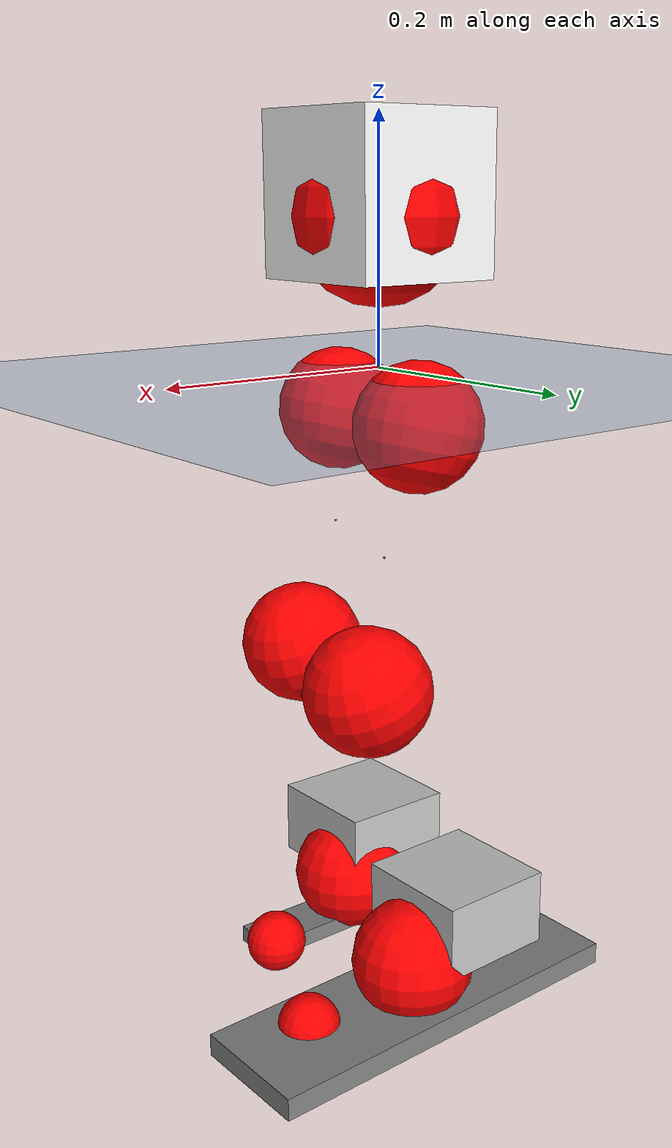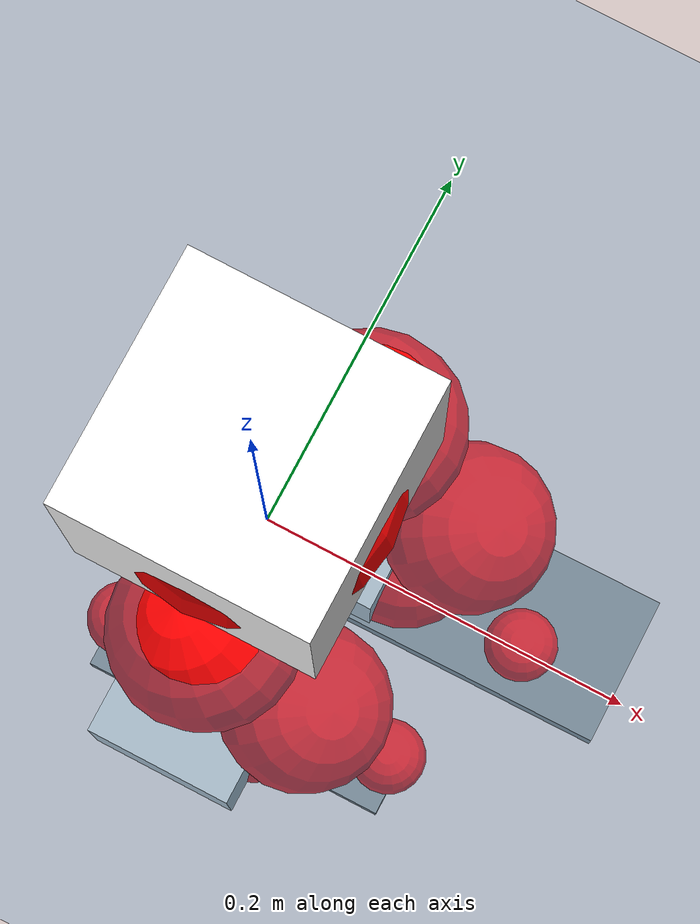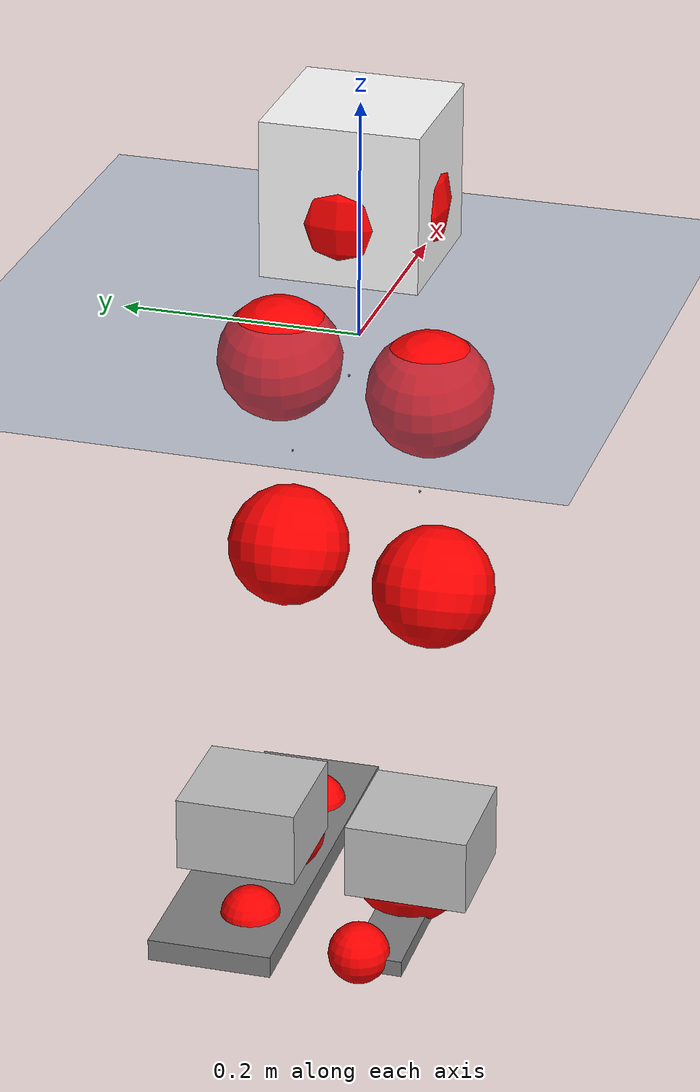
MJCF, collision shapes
<mujoco model="pi_12dof_release_v1">
  <compiler angle="radian" assetdir="assets" balanceinertia="true" inertiafromgeom="false"/>

  <option timestep="0.005" density="1.2" viscosity="2e-05"/>

  <size nkey="1"/>

  <visual>
    <quality shadowsize="8192"/>
    <map shadowclip="0.5"/>
  </visual>

  <default>
    <default class="/">
      <joint armature="0.01" damping="0.01" frictionloss="0.01"/>
      <geom contype="0" conaffinity="0" group="1" solref="-1000 -80"/>
      <site size="0.01 0.005 0.005" group="5"/>
      <general forcelimited="true" biastype="affine" gainprm="20" biasprm="0 -20 -0.5"/>
      <default class="foot">
        <geom size="0.0845 0.036 0.005" type="box" condim="6" group="4" priority="1" friction="0.9 0.2 0.2" solimp="0.015 1 0.005"/>
      </default>
      <default class="reward_collision_sphere">
        <geom group="5" rgba="1 0 0 1"/>
      </default>
    </default>
  </default>

  <asset>
    <texture type="skybox" colorspace="auto" name="//unnamed_texture_0" builtin="gradient" rgb1="0.95 0.95 0.95" rgb2="0.95 0.95 0.95" width="100" height="600"/>
    <texture type="2d" colorspace="auto" name="texplane" builtin="checker" rgb1="0.345 0.575 0.748" rgb2="0.345 0.575 0.748" markrgb="1 1 1" width="512" height="512"/>
    <material name="MatPlane" class="/" texture="texplane" texuniform="true" texrepeat="2 2" specular="0.9"/>
    <mesh name="baselink_1" class="/" file="baselink_1.STL"/>
    <mesh name="r_hip_pitch_link" class="/" file="r_hip_pitch_link.STL"/>
    <mesh name="r_hip_roll_link" class="/" file="r_hip_roll_link.STL"/>
    <mesh name="r_thigh_link" class="/" file="r_thigh_link.STL"/>
    <mesh name="r_calf_link" class="/" file="r_calf_link.STL"/>
    <mesh name="r_ankle_pitch_link" class="/" file="r_ankle_pitch_link.STL"/>
    <mesh name="r_ankle_roll_link" class="/" file="r_ankle_roll_link.STL"/>
    <mesh name="l_hip_pitch_link" class="/" file="l_hip_pitch_link.STL"/>
    <mesh name="l_hip_roll_link" class="/" file="l_hip_roll_link.STL"/>
    <mesh name="l_thigh_link" class="/" file="l_thigh_link.STL"/>
    <mesh name="l_calf_link" class="/" file="l_calf_link.STL"/>
    <mesh name="l_ankle_pitch_link" class="/" file="l_ankle_pitch_link.STL"/>
    <mesh name="l_ankle_roll_link" class="/" file="l_ankle_roll_link.STL"/>
  </asset>

  <worldbody>
    <geom name="floor" class="/" size="100 100 0.125" type="plane" group="0" material="MatPlane"/>
    <light name="toplight_shadow" class="/" pos="0 0 5" dir="0.0990148 0.0990148 -0.990148" type="directional" ambient="0.04 0.04 0.04" diffuse="0.55 0.55 0.55" specular="0.12 0.12 0.12"/>
    <light name="toplight_fill" class="/" pos="0 0 5" dir="0.0990148 0.0990148 -0.990148" type="directional" castshadow="false" ambient="0.04 0.04 0.04" diffuse="0.3 0.3 0.3" specular="0.08 0.08 0.08"/>
    <body name="trunk" pos="-0.000682776 -0.00118134 0.00899016" quat="1 0.000272493 0.000409929 -0.000221503">
      <inertial pos="0.0137594 0.0116811 0.0579523" quat="0.690525 -0.00281429 -0.00907948 0.723246" mass="4.77004" diaginertia="0.0600587 0.00283321 0.0353131"/>
      <joint name="//unnamed_joint_0" type="free"/>
      <geom name="//unnamed_geom_1" class="/" type="mesh" density="0" rgba="1 1 1 1" mesh="baselink_1"/>
      <geom name="//unnamed_geom_2" class="/" size="0.065117 0.065117 0.065117" pos="0 0 0.126402" type="box" rgba="1 1 1 1"/>
      <geom name="//unnamed_geom_3" class="reward_collision_sphere" size="0.0716287" pos="0 0 0.110602"/>
      <site name="imu" class="/" pos="0.0691746 0.00780087 -0.0582633" size="0.0130234"/>
      <camera name="track" class="/" pos="0 -1.63798 0" quat="0.707107 0.707107 0 0" mode="trackcom"/>
      <camera name="ego_camera" class="/" pos="0.113101 0 0.284404" quat="-0.5 -0.5 0.5 0.5"/>
      <body name="r_hip_pitch_link" pos="-0.00191249 -0.0140143 -0.0517767" quat="0.991937 -0.000495767 -0.126709 -0.0024024">
        <inertial pos="-0.0105287 -0.0387171 -0.000250643" quat="0.014769 0.692809 -0.0252538 0.720528" mass="0.938065" diaginertia="0.000975859 3.552e-05 0.000770097"/>
        <joint name="r_hip_pitch_joint" class="/" pos="0 0 0" axis="0.0549801 -0.997453 0.0454445" range="-1.72257 1.50296" armature="0.0171178" damping="0.0805154" frictionloss="0.0160671"/>
        <geom name="//unnamed_geom_4" class="/" type="mesh" density="0" rgba="0.75294 0.75294 0.75294 1" mesh="r_hip_pitch_link"/>
        <geom name="//unnamed_geom_5" class="/" size="0.00065117 0.00065117 0.00065117" type="box" rgba="0.75294 0.75294 0.75294 1"/>
        <body name="r_hip_roll_link" pos="-0.00189763 -0.0459788 0.00220469" quat="1 0.000564027 -8.33259e-05 -7.5317e-05">
          <inertial pos="-0.00825208 3.34503e-05 -0.108293" quat="0.718492 -0.0730472 -0.0800209 0.687044" mass="0.770766" diaginertia="0.00299627 0.000101704 0.00129554"/>
          <joint name="r_hip_roll_joint" class="/" pos="0 0 0" axis="-0.99768 0.0669105 0.0125734" stiffness="0.0138182" range="0.120331 0.398415" armature="0.0168868" damping="0.00673572" frictionloss="0.006817"/>
          <geom name="//unnamed_geom_6" class="/" type="mesh" density="0" rgba="0.75294 0.75294 0.75294 1" mesh="r_hip_roll_link"/>
          <geom name="//unnamed_geom_7" class="/" size="0.00065117 0.00065117 0.00065117" type="box" rgba="0.75294 0.75294 0.75294 1"/>
          <geom name="//unnamed_geom_8" class="reward_collision_sphere" size="0.0520936"/>
          <body name="r_thigh_link" pos="-0.0109125 0.0109015 -0.0955458" quat="0.999986 -0.000751512 -0.000718105 0.00513723">
            <inertial pos="0.00319619 0.000217406 -0.07186" quat="0.744929 0.667022 0.0117904 -0.00481811" mass="0.270235" diaginertia="0.00106205 3.49566e-05 0.000643174"/>
            <joint name="r_thigh_joint" class="/" pos="0 0 0" axis="-0.0234105 0.034223 -0.99914" range="-0.397059 0.499258" armature="0.0135265" damping="0" frictionloss="0.0117474"/>
            <geom name="//unnamed_geom_9" class="/" type="mesh" density="0" rgba="0.75294 0.75294 0.75294 1" mesh="r_thigh_link"/>
            <geom name="//unnamed_geom_10" class="/" size="0.00065117 0.00065117 0.00065117" type="box" rgba="0.75294 0.75294 0.75294 1"/>
            <body name="r_calf_link" pos="0.0083577 -0.00324767 -0.109817" quat="0.947525 0.000407753 0.319682 0.000319243">
              <inertial pos="-0.0119202 0.000227142 -0.110667" quat="0.999995 -0.00288274 -0.000960612 3.85079e-06" mass="1.68285" diaginertia="0.0265094 0.00105174 0.00156257"/>
              <joint name="r_calf_joint" class="/" pos="0 0 0" axis="-0.0322525 -0.999053 -0.0291887" stiffness="0.00929777" range="-1.64493 0.504339" armature="0.0185765" damping="0" frictionloss="0.0172724"/>
              <geom name="//unnamed_geom_11" class="/" type="mesh" density="0" rgba="0.75294 0.75294 0.75294 1" mesh="r_calf_link"/>
              <geom name="//unnamed_geom_12" class="/" size="0.00065117 0.00065117 0.00065117" type="box" rgba="0.75294 0.75294 0.75294 1"/>
              <geom name="//unnamed_geom_13" class="reward_collision_sphere" size="0.0520936"/>
              <body name="r_ankle_pitch_link" pos="0.0058254 -0.0124975 -0.214604" quat="0.97998 -0.000944839 -0.199092 -0.000753299">
                <inertial pos="0.00718259 0.00111618 0.000565431" quat="-0.0468957 0.719218 -0.0232285 0.692811" mass="0.506319" diaginertia="0.00267109 8.24049e-05 0.00122292"/>
                <joint name="r_ankle_pitch_joint" class="/" pos="0 0 0" axis="-0.0154324 -0.999877 -0.00277225" stiffness="0.045654" range="-1.23357 0.453325" armature="0.0147193" damping="0.068568" frictionloss="0.0134246"/>
                <geom name="//unnamed_geom_14" class="/" type="mesh" density="0" rgba="0.75294 0.75294 0.75294 1" mesh="r_ankle_pitch_link"/>
                <geom name="//unnamed_geom_15" class="/" size="0.0507913 0.0520936 0.0325585" type="box" rgba="0.75294 0.75294 0.75294 1"/>
                <body name="r_ankle_roll_link" pos="0.101778 0.0150756 -0.00535627" quat="1 0.000274993 3.03667e-06 -0.000179205">
                  <inertial pos="-0.0371853 0.000266397 -0.0353628" quat="0.556859 0.416993 0.466756 0.546045" mass="1.15632" diaginertia="0.0101865 0.000423962 0.00275296"/>
                  <joint name="r_ankle_roll_joint" class="/" pos="0 0 0" axis="-0.999996 -0.00104454 0.00249499" range="0.0209585 0.0458417" armature="0.0103567" damping="0.0703485" frictionloss="0.00567851"/>
                  <geom name="//unnamed_geom_16" class="/" type="mesh" density="0" rgba="0.75294 0.75294 0.75294 1" mesh="r_ankle_roll_link"/>
                  <geom name="//unnamed_geom_17" class="/" type="mesh" rgba="0.75294 0.75294 0.75294 1" mesh="r_ankle_roll_link"/>
                  <geom name="right_foot" class="foot" size="0.110132 0.0219452 0.00702934" pos="-0.0769084 0 -0.069521"/>
                  <geom name="//unnamed_geom_19" class="reward_collision_sphere" size="0.0520936" pos="-0.0754004 0 -0.0316004"/>
                  <geom name="//unnamed_geom_20" class="reward_collision_sphere" size="0.0260468" pos="0.0226201 0.0163798 -0.0632009"/>
                  <geom name="//unnamed_geom_21" class="reward_collision_sphere" size="0.0260468" pos="-0.180961 0.0163798 -0.0632009"/>
                  <site name="right_foot" class="foot" pos="-0.0769084 0 -0.069521" size="0.0130234"/>
                </body>
              </body>
            </body>
          </body>
        </body>
      </body>
      <body name="l_hip_pitch_link" pos="0.0135051 0.0132972 -0.0514773" quat="0.992127 -0.00171727 -0.125224 0.000662228">
        <inertial pos="-0.00474333 0.0323948 -0.000479084" quat="-0.00091144 0.697721 0.0272699 0.71585" mass="0.861509" diaginertia="0.00120661 3.6751e-05 0.00129415"/>
        <joint name="l_hip_pitch_joint" class="/" pos="0 0 0" axis="-0.00909468 0.998803 -0.048059" stiffness="0.0189895" range="-1.0079 1.71318" armature="0.00464135" damping="0.0693991" frictionloss="0.0144983"/>
        <geom name="//unnamed_geom_22" class="/" type="mesh" density="0" rgba="0.75294 0.75294 0.75294 1" mesh="l_hip_pitch_link"/>
        <geom name="//unnamed_geom_23" class="/" size="0.00065117 0.00065117 0.00065117" type="box" rgba="0.75294 0.75294 0.75294 1"/>
        <body name="l_hip_roll_link" pos="0.008319 0.0610512 0.00325107" quat="1 0.000409017 0.000466294 7.54977e-05">
          <inertial pos="-0.000804118 -0.0103146 -0.0942942" quat="0.698454 -0.0774569 -0.078683 0.707087" mass="0.851646" diaginertia="0.00257242 0.000112288 0.00120072"/>
          <joint name="l_hip_roll_joint" class="/" pos="0 0 0" axis="-0.99771 0.0504399 -0.0450617" range="-0.772863 -0.0519" armature="0.011797" damping="0.0275175" frictionloss="0.0206056"/>
          <geom name="//unnamed_geom_24" class="/" type="mesh" density="0" rgba="0.75294 0.75294 0.75294 1" mesh="l_hip_roll_link"/>
          <geom name="//unnamed_geom_25" class="/" size="0.00065117 0.00065117 0.00065117" type="box" rgba="0.75294 0.75294 0.75294 1"/>
          <geom name="//unnamed_geom_26" class="reward_collision_sphere" size="0.0520936"/>
          <body name="l_thigh_link" pos="0.00844497 -0.000198312 -0.104378" quat="0.999996 -0.00223533 -0.00130263 0.000661996">
            <inertial pos="0.000443678 0.00114753 -0.0760032" quat="0.654559 0.752876 -0.0496487 -0.0475871" mass="0.251457" diaginertia="0.00098665 3.48555e-05 0.000679941"/>
            <joint name="l_thigh_joint" class="/" pos="0 0 0" axis="-0.000251859 -0.0259476 -0.999663" range="-0.446181 0.13473" armature="0.00896104" damping="0.0607048" frictionloss="0.00768883"/>
            <geom name="//unnamed_geom_27" class="/" type="mesh" density="0" rgba="0.75294 0.75294 0.75294 1" mesh="l_thigh_link"/>
            <geom name="//unnamed_geom_28" class="/" size="0.00065117 0.00065117 0.00065117" type="box" rgba="0.75294 0.75294 0.75294 1"/>
            <body name="l_calf_link" pos="6.26956e-05 0.0122074 -0.105053" quat="0.946353 -0.000127895 0.32312 0.00298236">
              <inertial pos="0.0128276 0.00218466 -0.121468" quat="0.999864 0.00286485 -0.0153049 -0.00546458" mass="1.96062" diaginertia="0.0301887 0.00138484 0.00216989"/>
              <joint name="l_calf_joint" class="/" pos="0 0 0" axis="-0.00373603 0.999685 0.024817" stiffness="0.0214651" range="-0.751112 1.94691" armature="0.0200759" damping="0.00456214" frictionloss="0.0206918"/>
              <geom name="//unnamed_geom_29" class="/" type="mesh" density="0" rgba="0.75294 0.75294 0.75294 1" mesh="l_calf_link"/>
              <geom name="//unnamed_geom_30" class="/" size="0.00065117 0.00065117 0.00065117" type="box" rgba="0.75294 0.75294 0.75294 1"/>
              <geom name="//unnamed_geom_31" class="reward_collision_sphere" size="0.0520936"/>
              <body name="l_ankle_pitch_link" pos="0.000144535 0.00640123 -0.233591" quat="0.980122 -4.46396e-05 -0.198395 -5.16518e-05">
                <inertial pos="-0.00212921 0.00220897 -0.00228448" quat="-0.00216823 0.705616 0.000207377 0.708591" mass="0.535198" diaginertia="0.00322632 9.69108e-05 0.00134286"/>
                <joint name="l_ankle_pitch_joint" class="/" pos="0 0 0" axis="0.0383258 0.998727 0.0327803" stiffness="0.00109188" range="-0.498962 1.32033" armature="0.0120471" damping="0.059583" frictionloss="0.00335595"/>
                <geom name="//unnamed_geom_32" class="/" type="mesh" density="0" rgba="0.75294 0.75294 0.75294 1" mesh="l_ankle_pitch_link"/>
                <geom name="//unnamed_geom_33" class="/" size="0.0507913 0.0520936 0.0325585" type="box" rgba="0.75294 0.75294 0.75294 1"/>
                <body name="l_ankle_roll_link" pos="0.125537 0.00277998 -0.0023747" quat="0.999995 -0.000318997 -0.00157193 0.00281513">
                  <inertial pos="-0.0306953 -0.00221817 -0.023061" quat="0.55474 0.465182 0.452379 0.52079" mass="1.12199" diaginertia="0.00957916 0.000327061 0.00278387"/>
                  <joint name="l_ankle_roll_joint" class="/" pos="0 0 0" axis="-1 -0.000381656 -0.000849698" range="-0.183686 0.170985" armature="0.0157996" damping="0.00540231" frictionloss="0.0216202"/>
                  <geom name="//unnamed_geom_34" class="/" type="mesh" density="0" rgba="0.75294 0.75294 0.75294 1" mesh="l_ankle_roll_link"/>
                  <geom name="//unnamed_geom_35" class="/" type="mesh" rgba="0.75294 0.75294 0.75294 1" mesh="l_ankle_roll_link"/>
                  <geom name="left_foot" class="foot" size="0.171598 0.0534842 0.00953135" pos="-0.0769084 0 -0.069521"/>
                  <geom name="//unnamed_geom_37" class="reward_collision_sphere" size="0.0520936" pos="-0.0754004 0 -0.0316004"/>
                  <geom name="//unnamed_geom_38" class="reward_collision_sphere" size="0.0260468" pos="0.0226201 -0.0163798 -0.0632009"/>
                  <geom name="//unnamed_geom_39" class="reward_collision_sphere" size="0.0260468" pos="-0.180961 -0.0163798 -0.0632009"/>
                  <site name="left_foot" class="foot" pos="-0.0769084 0 -0.069521" size="0.0130234"/>
                </body>
              </body>
            </body>
          </body>
        </body>
      </body>
    </body>
  </worldbody>

  <contact>
    <pair class="/" geom1="floor" geom2="right_foot" name="//unnamed_contact_1"/>
    <pair class="/" geom1="floor" geom2="left_foot" name="//unnamed_contact_0"/>
  </contact>

  <actuator>
    <general name="r_hip_pitch_joint" class="/" joint="r_hip_pitch_joint" forcerange="-22.4514 22.4514" gainprm="27.265" biasprm="0 -27.265 -0.464355"/>
    <general name="r_hip_roll_joint" class="/" joint="r_hip_roll_joint" forcerange="-38.539 38.539" gainprm="27.265" biasprm="0 -27.265 -0.464355"/>
    <general name="r_thigh_joint" class="/" joint="r_thigh_joint" forcerange="-17.4285 17.4285" gainprm="27.265" biasprm="0 -27.265 -0.464355"/>
    <general name="r_calf_joint" class="/" joint="r_calf_joint" forcerange="-26.3436 26.3436" gainprm="27.265" biasprm="0 -27.265 -0.464355"/>
    <general name="r_ankle_pitch_joint" class="/" joint="r_ankle_pitch_joint" forcerange="-38.2516 38.2516" gainprm="27.265" biasprm="0 -27.265 -0.464355"/>
    <general name="r_ankle_roll_joint" class="/" joint="r_ankle_roll_joint" forcerange="-25.7928 25.7928" gainprm="27.265" biasprm="0 -27.265 -0.464355"/>
    <general name="l_hip_pitch_joint" class="/" joint="l_hip_pitch_joint" forcerange="-29.4094 29.4094" gainprm="27.265" biasprm="0 -27.265 -0.464355"/>
    <general name="l_hip_roll_joint" class="/" joint="l_hip_roll_joint" forcerange="-35.0173 35.0173" gainprm="27.265" biasprm="0 -27.265 -0.464355"/>
    <general name="l_thigh_joint" class="/" joint="l_thigh_joint" forcerange="-30.8328 30.8328" gainprm="27.265" biasprm="0 -27.265 -0.464355"/>
    <general name="l_calf_joint" class="/" joint="l_calf_joint" forcerange="-35.6064 35.6064" gainprm="27.265" biasprm="0 -27.265 -0.464355"/>
    <general name="l_ankle_pitch_joint" class="/" joint="l_ankle_pitch_joint" forcerange="-21.0752 21.0752" gainprm="27.265" biasprm="0 -27.265 -0.464355"/>
    <general name="l_ankle_roll_joint" class="/" joint="l_ankle_roll_joint" forcerange="-39.0887 39.0887" gainprm="27.265" biasprm="0 -27.265 -0.464355"/>
  </actuator>

  <sensor>
    <gyro site="imu" name="imu_angular_velocity"/>
    <velocimeter site="imu" name="imu_linear_velocity"/>
    <framelinvel objtype="site" objname="left_foot" name="left_foot_global_linear_velocity"/>
    <framelinvel objtype="site" objname="right_foot" name="right_foot_global_linear_velocity"/>
  </sensor>

  <keyframe>
    <key name="home" qpos="0 0 0.291 1 0 0 0 0.4 0 0 -0.8 0.4 0 -0.4 0 0 0.8 -0.4 0"/>
  </keyframe>
</mujoco>
